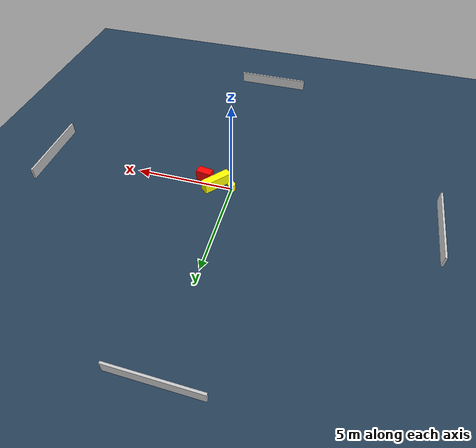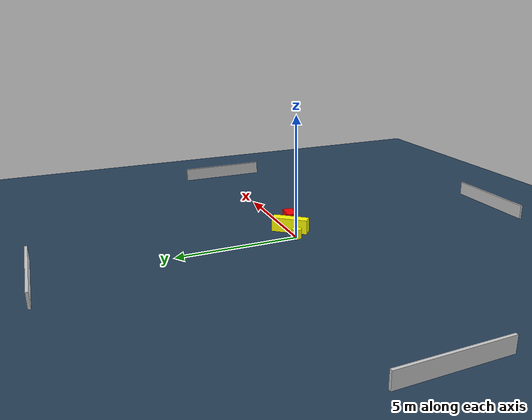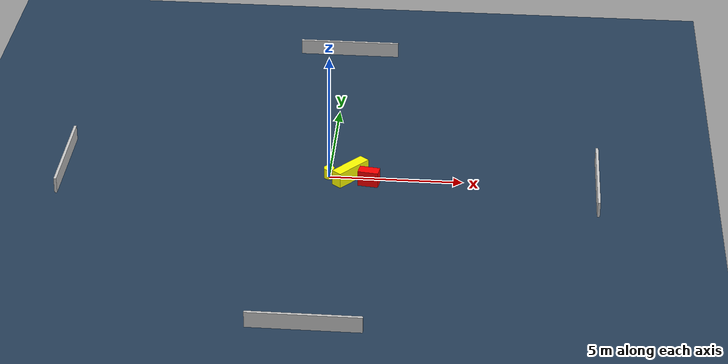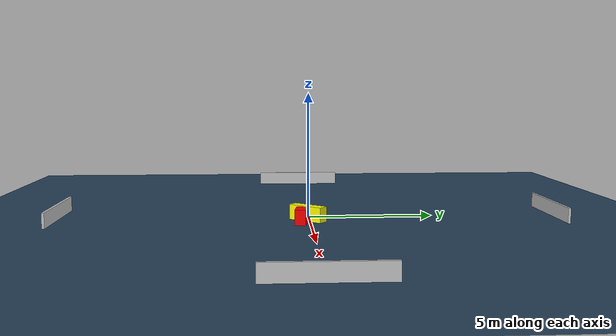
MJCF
<?xml version="1.0" ?>
<mujoco model="generated_environment">
  <option timestep="0.01" integrator="RK4" cone="elliptic"/>
  <default>
    <geom density="1"/>
  </default>
  <asset>
    <texture builtin="gradient" height="3072" name="skybox" rgb1="0.3 0.5 0.7" rgb2="0 0 0" type="skybox" width="512"/>
    <texture builtin="checker" height="300" name="groundplane" rgb1="0.2 0.3 0.4" rgb2="0.1 0.2 0.3" type="2d" width="300"/>
    <material name="groundplane" reflectance="0.2" texrepeat="5 5" texture="groundplane"/>
  </asset>
  <worldbody>
    <light dir="0 0 -1" directional="true" pos="0 0 1.5"/>
    <geom condim="3" friction="0.5 0.005 0.001" material="groundplane" name="floor" pos="0 0 0" size="0 0 0.05" type="plane"/>
    <body name="walls">
      <geom name="wall_1" condim="4" pos="-10.0 0.0 0.3" rgba="0.800000011920929 0.800000011920929 0.800000011920929 1.0" size="0.05 2.0 0.3" type="box"/>
      <geom name="wall_2" condim="4" pos="10.0 0.0 0.3" rgba="0.800000011920929 0.800000011920929 0.800000011920929 1.0" size="0.05 2.0 0.3" type="box"/>
      <geom name="wall_3" condim="4" pos="0.0 -10.0 0.3" rgba="0.800000011920929 0.800000011920929 0.800000011920929 1.0" size="2.0 0.05 0.3" type="box"/>
      <geom name="wall_4" condim="4" pos="0.0 10.0 0.3" rgba="0.800000011920929 0.800000011920929 0.800000011920929 1.0" size="2.0 0.05 0.3" type="box"/>
    </body>
    <body name="robot">
      <joint name="joint_x" type="slide" pos="0 0 0" axis="1 0 0"/>
      <joint name="joint_y" type="slide" pos="0 0 0" axis="0 1 0"/>
      <geom name="robot" type="cylinder" pos="0.0 0.0 0.2" size="0.2 0.2 0.0" mass="5.0" friction="1.0 0.005 0.0001" condim="4" rgba="1.0 1.0 0.0 1.0"/>
    </body>
    <body name="obstacle_1_movable">
      <geom name="obstacle_1_movable" condim="4" pos="0.8032055580899289 -0.0696237053165997 0.3" euler="0 0 319.9446572366318" friction="0.0 0.005 0.001" rgba="1.0 1.0 0.0 1.0" size="0.20815630319322434 0.7564245556526068 0.3" type="box" mass="0.1"/>
      <joint type="free"/>
    </body>
    <body name="obstacle_2_static">
      <geom name="obstacle_2_static" condim="4" pos="1.5157945371134958 -0.36489510605716313 0.3" euler="0 0 261.692133342027" friction="0.0 0.005 0.001" rgba="1.0 0.0 0.0 1.0" size="0.21359783717368713 0.3843125040333857 0.3" type="box"/>
    </body>
  </worldbody>
  <actuator>
    <motor name="actuator_x" joint="joint_x" gear="1" ctrlrange="-1 1"/>
    <motor name="actuator_y" joint="joint_y" gear="1" ctrlrange="-1 1"/>
  </actuator>
</mujoco>
